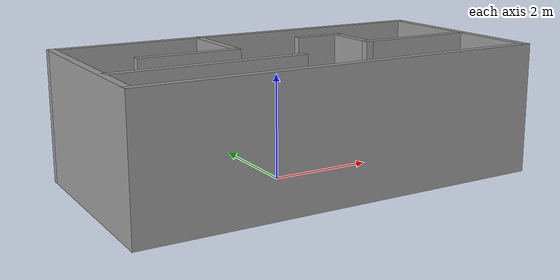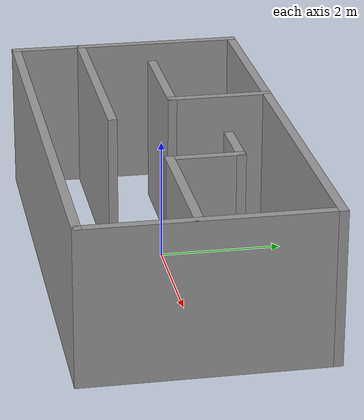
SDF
<?xml version='1.0'?>
<sdf version='1.7'>
  <model name='robo_sim'>
    <pose>0.335 -0.033453 0 0 -0 0</pose>
    <link name='Wall_0'>
      <collision name='Wall_0_Collision'>
        <geometry>
          <box>
            <size>8 0.15 2.5</size>
          </box>
        </geometry>
        <pose>0 0 1.25 0 -0 0</pose>
      </collision>
      <visual name='Wall_0_Visual'>
        <pose>0 0 1.25 0 -0 0</pose>
        <geometry>
          <box>
            <size>8 0.15 2.5</size>
          </box>
        </geometry>
        <material>
          <script>
            <uri>file://media/materials/scripts/gazebo.material</uri>
            <name>Gazebo/Grey</name>
          </script>
          <ambient>1 1 1 1</ambient>
        </material>
        <meta>
          <layer>0</layer>
        </meta>
      </visual>
      <pose>-0 -1.92655 0 0 -0 0</pose>
    </link>
    <link name='Wall_1'>
      <collision name='Wall_1_Collision'>
        <geometry>
          <box>
            <size>4 0.15 2.5</size>
          </box>
        </geometry>
        <pose>0 0 1.25 0 -0 0</pose>
      </collision>
      <visual name='Wall_1_Visual'>
        <pose>0 0 1.25 0 -0 0</pose>
        <geometry>
          <box>
            <size>4 0.15 2.5</size>
          </box>
        </geometry>
        <material>
          <script>
            <uri>file://media/materials/scripts/gazebo.material</uri>
            <name>Gazebo/Grey</name>
          </script>
          <ambient>1 1 1 1</ambient>
        </material>
        <meta>
          <layer>0</layer>
        </meta>
      </visual>
      <pose>3.925 -0.001547 0 0 -0 1.5708</pose>
    </link>
    <link name='Wall_15'>
      <collision name='Wall_15_Collision'>
        <geometry>
          <box>
            <size>2.5 0.15 2.5</size>
          </box>
        </geometry>
        <pose>0 0 1.25 0 -0 0</pose>
      </collision>
      <visual name='Wall_15_Visual'>
        <pose>0 0 1.25 0 -0 0</pose>
        <geometry>
          <box>
            <size>2.5 0.15 2.5</size>
          </box>
        </geometry>
        <material>
          <script>
            <uri>file://media/materials/scripts/gazebo.material</uri>
            <name>Gazebo/Grey</name>
          </script>
          <ambient>1 1 1 1</ambient>
        </material>
        <meta>
          <layer>0</layer>
        </meta>
      </visual>
      <pose>2.74575 -0.167567 0 0 -0 3.14159</pose>
    </link>
    <link name='Wall_16'>
      <collision name='Wall_16_Collision'>
        <geometry>
          <box>
            <size>1.25 0.15 2.5</size>
          </box>
        </geometry>
        <pose>0 0 1.25 0 -0 0</pose>
      </collision>
      <visual name='Wall_16_Visual'>
        <pose>0 0 1.25 0 -0 0</pose>
        <geometry>
          <box>
            <size>1.25 0.15 2.5</size>
          </box>
        </geometry>
        <material>
          <script>
            <uri>file://media/materials/scripts/gazebo.material</uri>
            <name>Gazebo/Grey</name>
          </script>
          <ambient>1 1 1 1</ambient>
        </material>
        <meta>
          <layer>0</layer>
        </meta>
      </visual>
      <pose>1.57075 0.382433 0 0 -0 1.5708</pose>
    </link>
    <link name='Wall_17'>
      <collision name='Wall_17_Collision'>
        <geometry>
          <box>
            <size>1 0.15 2.5</size>
          </box>
        </geometry>
        <pose>0 0 1.25 0 -0 0</pose>
      </collision>
      <visual name='Wall_17_Visual'>
        <pose>0 0 1.25 0 -0 0</pose>
        <geometry>
          <box>
            <size>1 0.15 2.5</size>
          </box>
        </geometry>
        <material>
          <script>
            <uri>file://media/materials/scripts/gazebo.material</uri>
            <name>Gazebo/Grey</name>
          </script>
          <ambient>1 1 1 1</ambient>
        </material>
        <meta>
          <layer>0</layer>
        </meta>
      </visual>
      <pose>1.14575 0.932433 0 0 -0 3.14159</pose>
    </link>
    <link name='Wall_2'>
      <collision name='Wall_2_Collision'>
        <geometry>
          <box>
            <size>8 0.15 2.5</size>
          </box>
        </geometry>
        <pose>0 0 1.25 0 -0 0</pose>
      </collision>
      <visual name='Wall_2_Visual'>
        <pose>0 0 1.25 0 -0 0</pose>
        <geometry>
          <box>
            <size>8 0.15 2.5</size>
          </box>
        </geometry>
        <material>
          <script>
            <uri>file://media/materials/scripts/gazebo.material</uri>
            <name>Gazebo/Grey</name>
          </script>
          <ambient>1 1 1 1</ambient>
        </material>
        <meta>
          <layer>0</layer>
        </meta>
      </visual>
      <pose>-0 1.92345 0 0 -0 3.14159</pose>
    </link>
    <link name='Wall_3'>
      <collision name='Wall_3_Collision'>
        <geometry>
          <box>
            <size>4 0.15 2.5</size>
          </box>
        </geometry>
        <pose>0 0 1.25 0 -0 0</pose>
      </collision>
      <visual name='Wall_3_Visual'>
        <pose>0 0 1.25 0 -0 0</pose>
        <geometry>
          <box>
            <size>4 0.15 2.5</size>
          </box>
        </geometry>
        <material>
          <script>
            <uri>file://media/materials/scripts/gazebo.material</uri>
            <name>Gazebo/Grey</name>
          </script>
          <ambient>1 1 1 1</ambient>
        </material>
        <meta>
          <layer>0</layer>
        </meta>
      </visual>
      <pose>-3.925 -0.001547 0 0 -0 -1.5708</pose>
    </link>
    <link name='Wall_5'>
      <collision name='Wall_5_Collision'>
        <geometry>
          <box>
            <size>1.75 0.15 2.5</size>
          </box>
        </geometry>
        <pose>0 0 1.25 0 -0 0</pose>
      </collision>
      <visual name='Wall_5_Visual'>
        <pose>0 0 1.25 0 -0 0</pose>
        <geometry>
          <box>
            <size>1.75 0.15 2.5</size>
          </box>
        </geometry>
        <material>
          <script>
            <uri>file://media/materials/scripts/gazebo.material</uri>
            <name>Gazebo/Grey</name>
          </script>
          <ambient>1 1 1 1</ambient>
        </material>
        <meta>
          <layer>0</layer>
        </meta>
      </visual>
      <pose>-1.01728 1.12655 0 0 -0 -1.5708</pose>
    </link>
    <link name='Wall_6'>
      <collision name='Wall_6_Collision'>
        <geometry>
          <box>
            <size>2 0.15 2.5</size>
          </box>
        </geometry>
        <pose>0 0 1.25 0 -0 0</pose>
      </collision>
      <visual name='Wall_6_Visual'>
        <pose>0 0 1.25 0 -0 0</pose>
        <geometry>
          <box>
            <size>2 0.15 2.5</size>
          </box>
        </geometry>
        <material>
          <script>
            <uri>file://media/materials/scripts/gazebo.material</uri>
            <name>Gazebo/Grey</name>
          </script>
          <ambient>1 1 1 1</ambient>
        </material>
        <meta>
          <layer>0</layer>
        </meta>
      </visual>
      <pose>-1.94228 0.326548 0 0 -0 3.14159</pose>
    </link>
    <link name='Wall_9'>
      <collision name='Wall_9_Collision'>
        <geometry>
          <box>
            <size>3.75 0.15 2.5</size>
          </box>
        </geometry>
        <pose>0 0 1.25 0 -0 0</pose>
      </collision>
      <visual name='Wall_9_Visual'>
        <pose>0 0 1.25 0 -0 0</pose>
        <geometry>
          <box>
            <size>3.75 0.15 2.5</size>
          </box>
        </geometry>
        <material>
          <script>
            <uri>file://media/materials/scripts/gazebo.material</uri>
            <name>Gazebo/Grey</name>
          </script>
          <ambient>1 1 1 1</ambient>
        </material>
        <meta>
          <layer>0</layer>
        </meta>
      </visual>
      <pose>-2.07653 -0.78061 0 0 -0 0</pose>
    </link>
    <static>1</static>
  </model>
</sdf>
